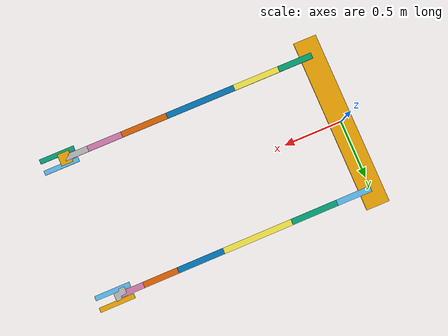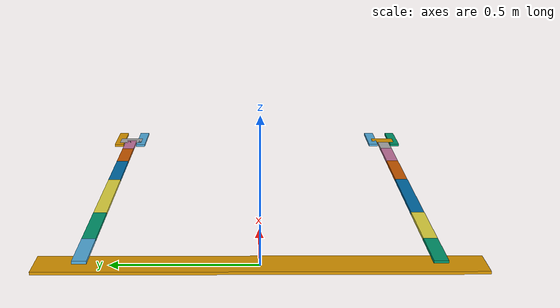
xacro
<?xml version="1.0"?>
<robot xmlns:xacro="http://www.ros.org/wiki/xacro" name="dual_arm_2d">
    <xacro:arg name="initial_positions_file" default="initial_positions.yaml" />

    <!-- Import dual_arm_2d urdf file -->
    <xacro:include filename="$(find control_robot)/urdf/dual_arm_2d.xacro" />

    <!-- Import control_xacro -->
    <xacro:include filename="dual_arm_2d.ros2_control.xacro" />

    <xacro:dual_arm_2d_ros2_control name="FakeSystem" initial_positions_file="$(arg initial_positions_file)"/>

</robot>

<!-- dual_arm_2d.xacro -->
<robot xmlns:xacro="http://ros.org/wiki/xacro" name="dual_arm_2d">

  <!-- Common properties -->
  <xacro:property name="effort" value="1"/>
  <xacro:property name="velocity" value="1.0"/>
  <xacro:property name="gripper_velocity" value="0.1"/>
  <xacro:property name="gripper_limit" value="0.03"/>
  <xacro:property name="arm_offset" value="0.6"/> <!-- Y-axis offset from base center -->

  <!-- Long base link along Y -->
  <link name="base_link">
    <visual><geometry><box size="0.2 1.5 0.01"/></geometry></visual>
    <collision><geometry><box size="0.2 1.5 0.01"/></geometry></collision>
  </link>

  <!-- Macro for an arm -->
  <xacro:macro name="one_arm" params="prefix base_offset_y">
    <xacro:macro name="arm_segment" params="joint_name parent_link child_link origin_xyz link_length link_size">
      <joint name="${joint_name}" type="revolute">
        <origin xyz="${origin_xyz}"/>
        <axis xyz="0 0 1"/>
        <parent link="${parent_link}"/>
        <child link="${child_link}"/>
        <limit effort="${effort}" velocity="${velocity}" lower="-3.14" upper="3.14"/>
      </joint>
      <link name="${child_link}">
        <visual><origin xyz="${link_length} 0 0"/><geometry><box size="${link_size}"/></geometry></visual>
        <collision><origin xyz="${link_length} 0 0"/><geometry><box size="${link_size}"/></geometry></collision>
      </link>
    </xacro:macro>

    <xacro:arm_segment joint_name="${prefix}joint1" parent_link="base_link" child_link="${prefix}link1" origin_xyz="0 ${base_offset_y} 0.01" link_length="0.15" link_size="0.3 0.05 0.01"/>
    <xacro:arm_segment joint_name="${prefix}joint2" parent_link="${prefix}link1" child_link="${prefix}link2" origin_xyz="0.3 0 0" link_length="0.2" link_size="0.4 0.05 0.01"/>
    <xacro:arm_segment joint_name="${prefix}joint3" parent_link="${prefix}link2" child_link="${prefix}link3" origin_xyz="0.4 0 0" link_length="0.3" link_size="0.6 0.05 0.01"/>
    <xacro:arm_segment joint_name="${prefix}joint4" parent_link="${prefix}link3" child_link="${prefix}link4" origin_xyz="0.6 0 0" link_length="0.2" link_size="0.4 0.05 0.01"/>
    <xacro:arm_segment joint_name="${prefix}joint5" parent_link="${prefix}link4" child_link="${prefix}link5" origin_xyz="0.4 0 0" link_length="0.15" link_size="0.3 0.05 0.01"/>
    <xacro:arm_segment joint_name="${prefix}joint6" parent_link="${prefix}link5" child_link="${prefix}link6" origin_xyz="0.3 0 0" link_length="0.1" link_size="0.2 0.05 0.01"/>

    <!-- Gripper -->
    <joint name="${prefix}gripper_base_joint" type="fixed">
      <origin xyz="0.2 0 0"/>
      <parent link="${prefix}link6"/><child link="${prefix}palm_link"/>
    </joint>
    <link name="${prefix}palm_link">
      <visual><geometry><box size="0.1 0.1 0.01"/></geometry></visual>
      <collision><geometry><box size="0.1 0.1 0.01"/></geometry></collision>
    </link>

    <joint name="${prefix}left_finger_joint" type="prismatic">
      <origin xyz="0.05 0.05 0"/><axis xyz="0 -1 0"/>
      <parent link="${prefix}palm_link"/><child link="${prefix}left_finger"/>
      <limit lower="0" upper="${gripper_limit}" effort="${effort}" velocity="${gripper_velocity}"/>
    </joint>
    <link name="${prefix}left_finger">
      <visual><geometry><box size="0.3 0.04 0.01"/></geometry></visual>
      <collision><geometry><box size="0.3 0.04 0.01"/></geometry></collision>
    </link>

    <joint name="${prefix}right_finger_joint" type="prismatic">
      <origin xyz="0.05 -0.05 0"/><axis xyz="0 1 0"/>
      <parent link="${prefix}palm_link"/><child link="${prefix}right_finger"/>
      <limit lower="0" upper="${gripper_limit}" effort="${effort}" velocity="${gripper_velocity}"/>
    </joint>
    <link name="${prefix}right_finger">
      <visual><geometry><box size="0.3 0.04 0.01"/></geometry></visual>
      <collision><geometry><box size="0.3 0.04 0.01"/></geometry></collision>
    </link>
  </xacro:macro>

  <!-- Instantiate two arms -->
  <xacro:one_arm prefix="left_" base_offset_y="${arm_offset}"/>
  <xacro:one_arm prefix="right_" base_offset_y="-${arm_offset}"/>

  <!-- ros2_control -->
  <xacro:macro name="ros2_joint" params="name">
    <joint name="${name}">
      <command_interface name="position"/>
      <state_interface name="position"/>
      <state_interface name="velocity"/>
    </joint>
  </xacro:macro>

  <ros2_control name="FakeArmSystem" type="system">
    <hardware>
      <plugin>fake_components/GenericSystem</plugin>
    </hardware>
    <!-- Left arm joints -->
    <xacro:ros2_joint name="left_joint1"/>
    <xacro:ros2_joint name="left_joint2"/>
    <xacro:ros2_joint name="left_joint3"/>
    <xacro:ros2_joint name="left_joint4"/>
    <xacro:ros2_joint name="left_joint5"/>
    <xacro:ros2_joint name="left_joint6"/>
    <xacro:ros2_joint name="left_left_finger_joint"/>
    <xacro:ros2_joint name="left_right_finger_joint"/>
    <!-- Right arm joints -->
    <xacro:ros2_joint name="right_joint1"/>
    <xacro:ros2_joint name="right_joint2"/>
    <xacro:ros2_joint name="right_joint3"/>
    <xacro:ros2_joint name="right_joint4"/>
    <xacro:ros2_joint name="right_joint5"/>
    <xacro:ros2_joint name="right_joint6"/>
    <xacro:ros2_joint name="right_left_finger_joint"/>
    <xacro:ros2_joint name="right_right_finger_joint"/>
  </ros2_control>
</robot>
